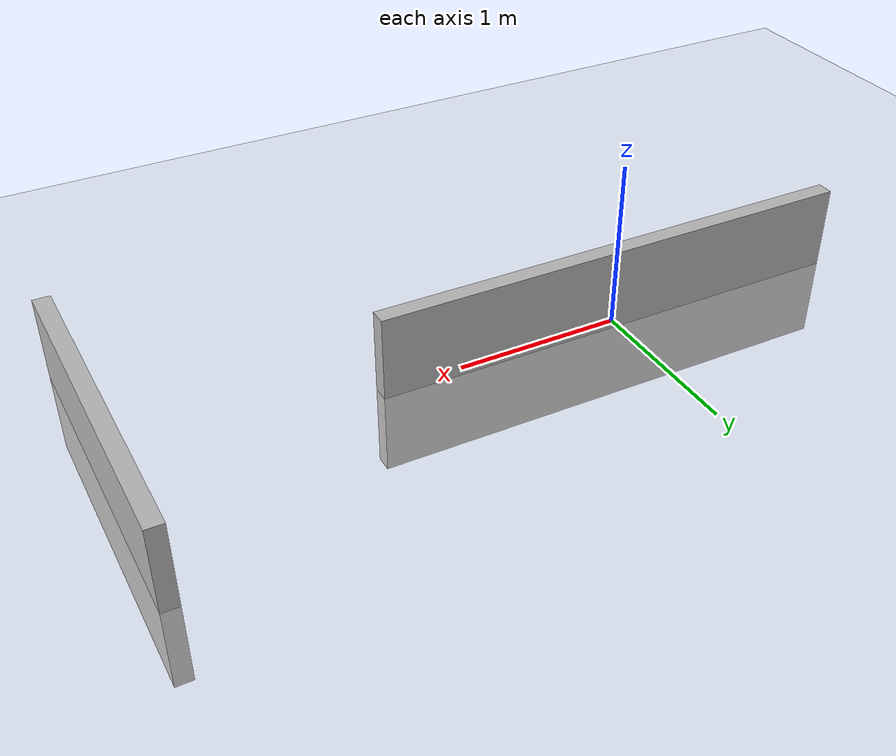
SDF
<?xml version="1.0" ?>
<sdf version="1.6">
  <world name="default">
    <include>
      <uri>model://ground_plane</uri>
    </include>
    <include>
      <uri>model://sun</uri>
    </include>

    <model name="wall_0">
      <static>true</static>
      <link name="link">
        <pose>0 0 0 0 0 0</pose>
        <collision name="collision">
          <geometry>
            <box>
              <size>3 0.1 1.0</size>
            </box>
          </geometry>
        </collision>
        <visual name="visual">
          <geometry>
            <box>
              <size>3 0.1 1.0</size>
            </box>
          </geometry>
        </visual>
      </link>
    </model>

    <model name="wall_1">
      <static>true</static>
      <link name="link">
        <pose>3 0 0 0 0 1.57</pose>
        <collision name="collision">
          <geometry>
            <box>
              <size>2 0.1 1.0</size>
            </box>
          </geometry>
        </collision>
        <visual name="visual">
          <geometry>
            <box>
              <size>2 0.1 1.0</size>
            </box>
          </geometry>
        </visual>
      </link>
    </model>

  </world>
</sdf>
